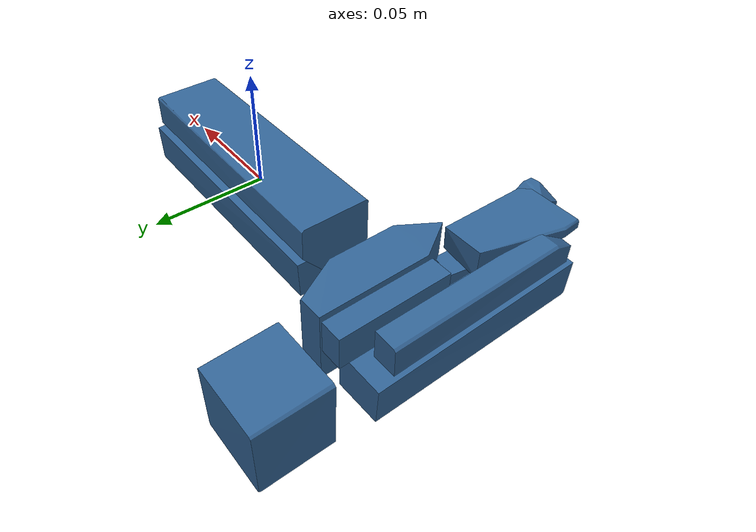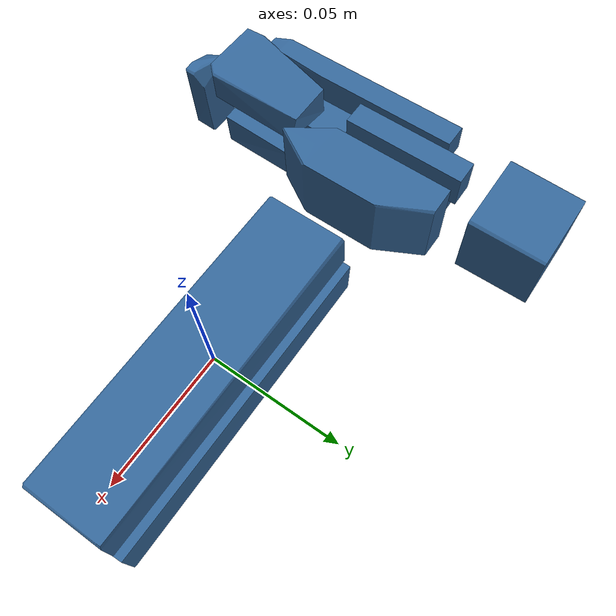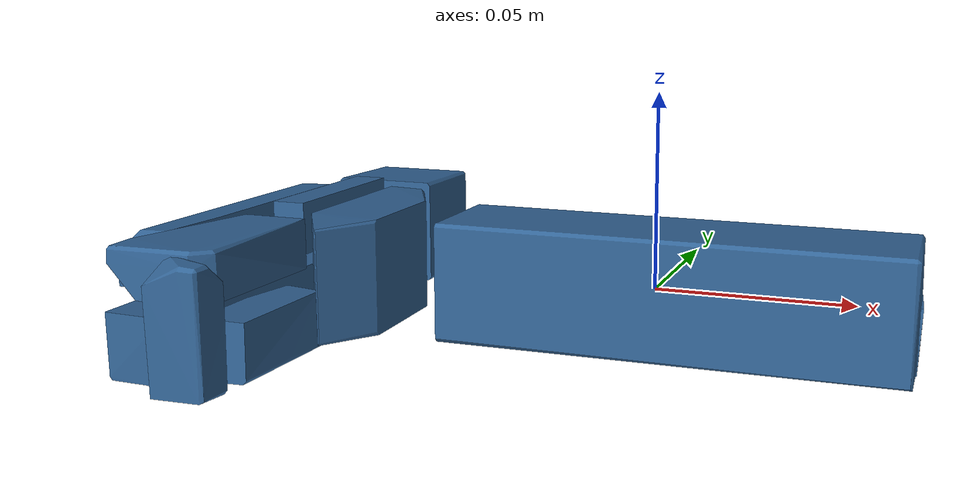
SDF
<?xml version='1.0' encoding='UTF-8'?>
<!-- This SDF was autogenerated by obj_to_drake_sdf.py -->
<sdf version="1.7">
  <model name="push_t_white">
    <link name="push_t_white">
      <inertial>
        <pose>0 0 0 0 0 0</pose>
        <mass>0.05</mass>
        <inertia>
          <ixx>6.2943276e-05</ixx>
          <iyy>0.00018783308</iyy>
          <izz>0.00023757242</izz>
          <ixy>-7.5844417e-11</ixy>
          <ixz>-1.9100802e-10</ixz>
          <iyz>8.8641371e-11</iyz>
        </inertia>
      </inertial>
      <visual name="convex_0">
        <pose>0 0 0 0 0 0</pose>
        <geometry>
          <mesh>
            <uri>push_t_white_convex_0.obj</uri>
          </mesh>
        </geometry>
        <material>
          <diffuse>0.19607843137254902 0.39215686274509803 0.5882352941176471 1</diffuse>
        </material>
      </visual>
      <collision name="convex_0_volume">
        <pose>0 0 0 0 0 0</pose>
        <geometry>
          <mesh>
            <uri>push_t_white_convex_0.obj</uri>
          </mesh>
        </geometry>
        <drake:proximity_properties xmlns:drake="uri:drake">
          <drake:compliant_hydroelastic/>
          <drake:hydroelastic_modulus> 3.0e7 </drake:hydroelastic_modulus>
          <drake:mesh_resolution_hint> 0.02 </drake:mesh_resolution_hint>
          <drake:hunt_crossley_dissipation>10</drake:hunt_crossley_dissipation>
          <drake:mu_dynamic>0.3</drake:mu_dynamic>
        </drake:proximity_properties>
      </collision>
      <visual name="convex_1">
        <pose>0 0 0 0 0 0</pose>
        <geometry>
          <mesh>
            <uri>push_t_white_convex_1.obj</uri>
          </mesh>
        </geometry>
        <material>
          <diffuse>0.19607843137254902 0.39215686274509803 0.5882352941176471 1</diffuse>
        </material>
      </visual>
      <collision name="convex_1_volume">
        <pose>0 0 0 0 0 0</pose>
        <geometry>
          <mesh>
            <uri>push_t_white_convex_1.obj</uri>
          </mesh>
        </geometry>
        <drake:proximity_properties xmlns:drake="uri:drake">
          <drake:compliant_hydroelastic/>
          <drake:hydroelastic_modulus> 3.0e7 </drake:hydroelastic_modulus>
          <drake:mesh_resolution_hint> 0.02 </drake:mesh_resolution_hint>
          <drake:hunt_crossley_dissipation>10</drake:hunt_crossley_dissipation>
          <drake:mu_dynamic>0.3</drake:mu_dynamic>
        </drake:proximity_properties>
      </collision>
      <visual name="convex_2">
        <pose>0 0 0 0 0 0</pose>
        <geometry>
          <mesh>
            <uri>push_t_white_convex_2.obj</uri>
          </mesh>
        </geometry>
        <material>
          <diffuse>0.19607843137254902 0.39215686274509803 0.5882352941176471 1</diffuse>
        </material>
      </visual>
      <collision name="convex_2_volume">
        <pose>0 0 0 0 0 0</pose>
        <geometry>
          <mesh>
            <uri>push_t_white_convex_2.obj</uri>
          </mesh>
        </geometry>
        <drake:proximity_properties xmlns:drake="uri:drake">
          <drake:compliant_hydroelastic/>
          <drake:hydroelastic_modulus> 3.0e7 </drake:hydroelastic_modulus>
          <drake:mesh_resolution_hint> 0.02 </drake:mesh_resolution_hint>
          <drake:hunt_crossley_dissipation>10</drake:hunt_crossley_dissipation>
          <drake:mu_dynamic>0.3</drake:mu_dynamic>
        </drake:proximity_properties>
      </collision>
      <visual name="convex_3">
        <pose>0 0 0 0 0 0</pose>
        <geometry>
          <mesh>
            <uri>push_t_white_convex_3.obj</uri>
          </mesh>
        </geometry>
        <material>
          <diffuse>0.19607843137254902 0.39215686274509803 0.5882352941176471 1</diffuse>
        </material>
      </visual>
      <collision name="convex_3_volume">
        <pose>0 0 0 0 0 0</pose>
        <geometry>
          <mesh>
            <uri>push_t_white_convex_3.obj</uri>
          </mesh>
        </geometry>
        <drake:proximity_properties xmlns:drake="uri:drake">
          <drake:compliant_hydroelastic/>
          <drake:hydroelastic_modulus> 3.0e7 </drake:hydroelastic_modulus>
          <drake:mesh_resolution_hint> 0.02 </drake:mesh_resolution_hint>
          <drake:hunt_crossley_dissipation>10</drake:hunt_crossley_dissipation>
          <drake:mu_dynamic>0.3</drake:mu_dynamic>
        </drake:proximity_properties>
      </collision>
      <visual name="convex_4">
        <pose>0 0 0 0 0 0</pose>
        <geometry>
          <mesh>
            <uri>push_t_white_convex_4.obj</uri>
          </mesh>
        </geometry>
        <material>
          <diffuse>0.19607843137254902 0.39215686274509803 0.5882352941176471 1</diffuse>
        </material>
      </visual>
      <collision name="convex_4_volume">
        <pose>0 0 0 0 0 0</pose>
        <geometry>
          <mesh>
            <uri>push_t_white_convex_4.obj</uri>
          </mesh>
        </geometry>
        <drake:proximity_properties xmlns:drake="uri:drake">
          <drake:compliant_hydroelastic/>
          <drake:hydroelastic_modulus> 3.0e7 </drake:hydroelastic_modulus>
          <drake:mesh_resolution_hint> 0.02 </drake:mesh_resolution_hint>
          <drake:hunt_crossley_dissipation>10</drake:hunt_crossley_dissipation>
          <drake:mu_dynamic>0.3</drake:mu_dynamic>
        </drake:proximity_properties>
      </collision>
      <visual name="convex_5">
        <pose>0 0 0 0 0 0</pose>
        <geometry>
          <mesh>
            <uri>push_t_white_convex_5.obj</uri>
          </mesh>
        </geometry>
        <material>
          <diffuse>0.19607843137254902 0.39215686274509803 0.5882352941176471 1</diffuse>
        </material>
      </visual>
      <collision name="convex_5_volume">
        <pose>0 0 0 0 0 0</pose>
        <geometry>
          <mesh>
            <uri>push_t_white_convex_5.obj</uri>
          </mesh>
        </geometry>
        <drake:proximity_properties xmlns:drake="uri:drake">
          <drake:compliant_hydroelastic/>
          <drake:hydroelastic_modulus> 3.0e7 </drake:hydroelastic_modulus>
          <drake:mesh_resolution_hint> 0.02 </drake:mesh_resolution_hint>
          <drake:hunt_crossley_dissipation>10</drake:hunt_crossley_dissipation>
          <drake:mu_dynamic>0.3</drake:mu_dynamic>
        </drake:proximity_properties>
      </collision>
      <visual name="convex_6">
        <pose>0 0 0 0 0 0</pose>
        <geometry>
          <mesh>
            <uri>push_t_white_convex_6.obj</uri>
          </mesh>
        </geometry>
        <material>
          <diffuse>0.19607843137254902 0.39215686274509803 0.5882352941176471 1</diffuse>
        </material>
      </visual>
      <collision name="convex_6_volume">
        <pose>0 0 0 0 0 0</pose>
        <geometry>
          <mesh>
            <uri>push_t_white_convex_6.obj</uri>
          </mesh>
        </geometry>
        <drake:proximity_properties xmlns:drake="uri:drake">
          <drake:compliant_hydroelastic/>
          <drake:hydroelastic_modulus> 3.0e7 </drake:hydroelastic_modulus>
          <drake:mesh_resolution_hint> 0.02 </drake:mesh_resolution_hint>
          <drake:hunt_crossley_dissipation>10</drake:hunt_crossley_dissipation>
          <drake:mu_dynamic>0.3</drake:mu_dynamic>
        </drake:proximity_properties>
      </collision>
      <visual name="convex_7">
        <pose>0 0 0 0 0 0</pose>
        <geometry>
          <mesh>
            <uri>push_t_white_convex_7.obj</uri>
          </mesh>
        </geometry>
        <material>
          <diffuse>0.19607843137254902 0.39215686274509803 0.5882352941176471 1</diffuse>
        </material>
      </visual>
      <collision name="convex_7_volume">
        <pose>0 0 0 0 0 0</pose>
        <geometry>
          <mesh>
            <uri>push_t_white_convex_7.obj</uri>
          </mesh>
        </geometry>
        <drake:proximity_properties xmlns:drake="uri:drake">
          <drake:compliant_hydroelastic/>
          <drake:hydroelastic_modulus> 3.0e7 </drake:hydroelastic_modulus>
          <drake:mesh_resolution_hint> 0.02 </drake:mesh_resolution_hint>
          <drake:hunt_crossley_dissipation>10</drake:hunt_crossley_dissipation>
          <drake:mu_dynamic>0.3</drake:mu_dynamic>
        </drake:proximity_properties>
      </collision>
      <visual name="convex_8">
        <pose>0 0 0 0 0 0</pose>
        <geometry>
          <mesh>
            <uri>push_t_white_convex_8.obj</uri>
          </mesh>
        </geometry>
        <material>
          <diffuse>0.19607843137254902 0.39215686274509803 0.5882352941176471 1</diffuse>
        </material>
      </visual>
      <collision name="convex_8_volume">
        <pose>0 0 0 0 0 0</pose>
        <geometry>
          <mesh>
            <uri>push_t_white_convex_8.obj</uri>
          </mesh>
        </geometry>
        <drake:proximity_properties xmlns:drake="uri:drake">
          <drake:compliant_hydroelastic/>
          <drake:hydroelastic_modulus> 3.0e7 </drake:hydroelastic_modulus>
          <drake:mesh_resolution_hint> 0.02 </drake:mesh_resolution_hint>
          <drake:hunt_crossley_dissipation>10</drake:hunt_crossley_dissipation>
          <drake:mu_dynamic>0.3</drake:mu_dynamic>
        </drake:proximity_properties>
      </collision>
      <visual name="convex_9">
        <pose>0 0 0 0 0 0</pose>
        <geometry>
          <mesh>
            <uri>push_t_white_convex_9.obj</uri>
          </mesh>
        </geometry>
        <material>
          <diffuse>0.19607843137254902 0.39215686274509803 0.5882352941176471 1</diffuse>
        </material>
      </visual>
      <collision name="convex_9_volume">
        <pose>0 0 0 0 0 0</pose>
        <geometry>
          <mesh>
            <uri>push_t_white_convex_9.obj</uri>
          </mesh>
        </geometry>
        <drake:proximity_properties xmlns:drake="uri:drake">
          <drake:compliant_hydroelastic/>
          <drake:hydroelastic_modulus> 3.0e7 </drake:hydroelastic_modulus>
          <drake:mesh_resolution_hint> 0.02 </drake:mesh_resolution_hint>
          <drake:hunt_crossley_dissipation>10</drake:hunt_crossley_dissipation>
          <drake:mu_dynamic>0.3</drake:mu_dynamic>
        </drake:proximity_properties>
      </collision>
    </link>
  </model>
</sdf>
